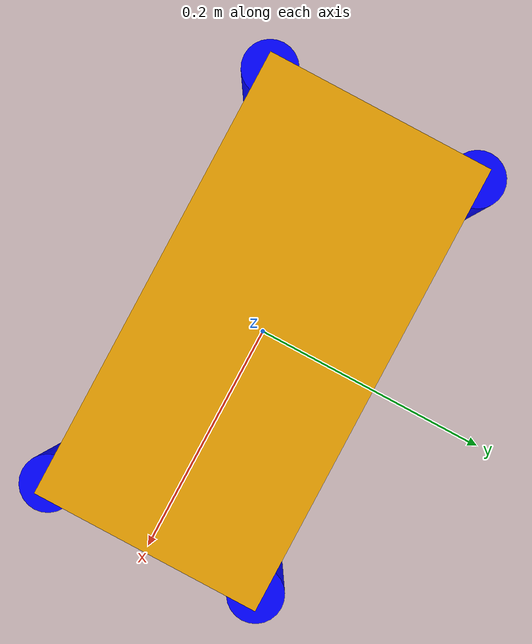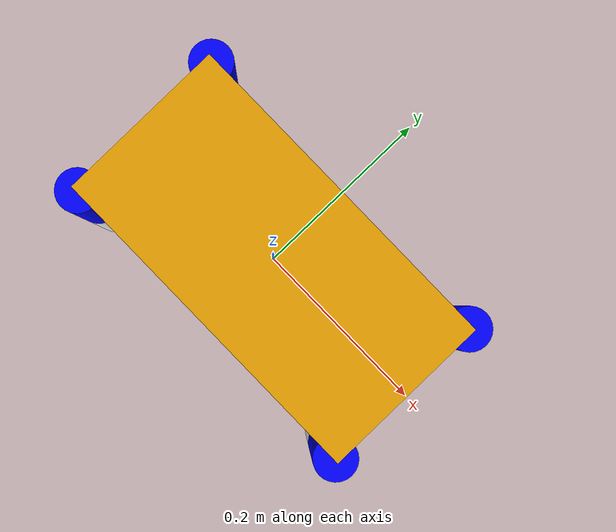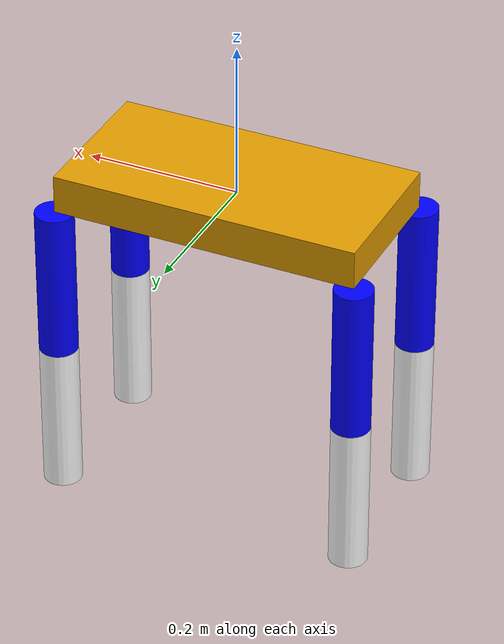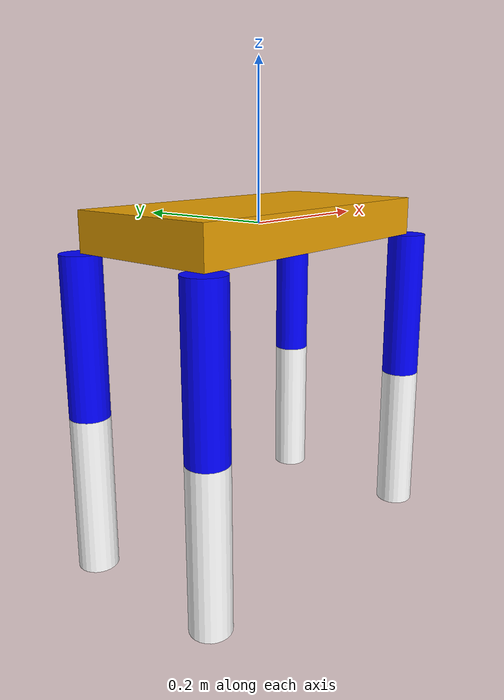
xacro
<?xml version="1.0"?>
<robot xmlns:xacro="http://www.ros.org/wiki/xacro" name="genesysrobot">
	<xacro:property name="body_len" value="0.4" />
	<xacro:property name="body_width" value="0.2" />
	<xacro:property name="body_height" value="0.05" />

	<link name="base_link">
        <visual>
            <geometry>
                <box size="${body_len} ${body_width} ${body_height}" />
            </geometry>
            <origin rpy="0 0 0" xyz="0 0 0"/>
        </visual>
        <inertial>
            <mass value="10" />
            <inertia ixx="1.0" ixy="0.0" ixz="0.0" iyy="1.0" iyz="0.0" izz="1.0" />
        </inertial>
    </link>

	<!-- Legs -->
	<xacro:include filename="$(find genesys)/urdf/leg.urdf.xacro"/>
	<xacro:leg_macro leg_name="LF_" originxyz="${body_len/2} ${body_width/2} ${-body_height/2}" originrpy="${pi/2} 0 0"/>
	<xacro:leg_macro leg_name="RF_" originxyz="${body_len/2} ${-body_width/2} ${-body_height/2}" originrpy="${pi/2} 0 0"/>
	<xacro:leg_macro leg_name="LH_" originxyz="${-body_len/2} ${body_width/2} ${-body_height/2}" originrpy="${pi/2} 0 0"/>
	<xacro:leg_macro leg_name="RH_" originxyz="${-body_len/2} ${-body_width/2} ${-body_height/2}" originrpy="${pi/2} 0 0"/>
</robot>

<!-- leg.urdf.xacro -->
<robot name="leg_urdf" xmlns:xacro="http://www.ros.org/wiki/xacro">

    <xacro:property name="thigh_len" value="0.2" />
    <xacro:property name="calf_len" value="0.2" />
    <xacro:property name="thigh_radius" value="0.025"/>
    <xacro:property name="calf_radius" value="0.025"/>

	<material name="blue">
		<color rgba="0 0 1 1"/>
	</material>
	<material name="white">
		<color rgba="1 1 1 1"/>
	</material>

	<xacro:macro name="default_inertial" params="mass">
		<inertial>
            <mass value="${mass}" />
            <inertia ixx="1.0" ixy="0.0" ixz="0.0" iyy="1.0" iyz="0.0" izz="1.0" />
        </inertial>
    </xacro:macro>

	<!--Upper Leg -->
	<xacro:macro name="leg_macro" params="leg_name originxyz originrpy">
		<link name="${leg_name}thigh_link">
			<visual>
				<origin rpy="${-pi/2} 0 0" xyz="0 ${-thigh_len/2} 0"  />
				<geometry>
					<cylinder length="${thigh_len}" radius="${thigh_radius}"/>
				</geometry>
				<material name="blue"/>
        		</visual>
		</link>
		<!--Hip Joint -->
		<joint name="base_link_to_${leg_name}thigh_link" type="revolute">
			<origin xyz="${originxyz}" rpy="${originrpy}" />
			<parent link="base_link" />
			<child link="${leg_name}thigh_link" />
			<axis xyz="0 0 1" />
			<limit effort="1000.0" lower="${-pi/3}" upper="${pi/3}" velocity="50"/>
		</joint>

		<link name="${leg_name}calf_link">
			<visual>
				<origin rpy="${-pi/2} 0 0" xyz="0 ${-calf_len/2} 0"  />
				<geometry>
					<cylinder length="${calf_len}" radius="${calf_radius}"/>
				</geometry>
				<material name="white"/>
        		</visual>
		</link>
		<!--Hip Joint -->
		<joint name="${leg_name}thigh_link_to_${leg_name}calf_link" type="revolute">
			<origin xyz="0 ${-thigh_len} 0" rpy="0 0 0" />
			<parent link="${leg_name}thigh_link" />
			<child link="${leg_name}calf_link" />
			<axis xyz="0 0 1" />
			<limit effort="1000.0" lower="${-pi/3}" upper="${pi/3}" velocity="50"/>
		</joint>

	</xacro:macro>

</robot>
